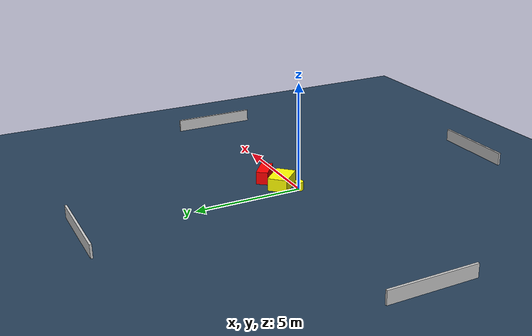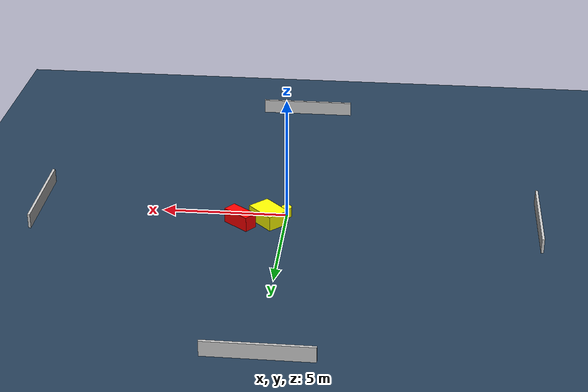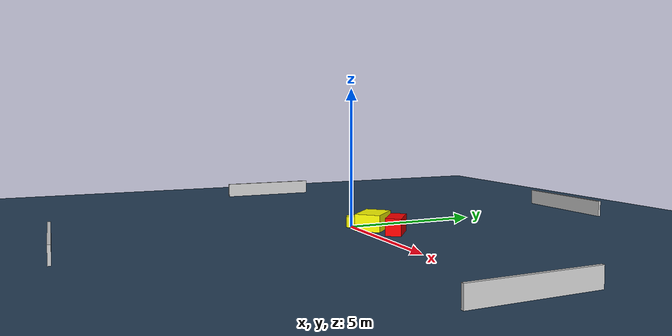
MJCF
<?xml version="1.0" ?>
<mujoco model="generated_environment">
  <option timestep="0.01" integrator="RK4" cone="elliptic"/>
  <default>
    <geom density="1"/>
  </default>
  <asset>
    <texture builtin="gradient" height="3072" name="skybox" rgb1="0.3 0.5 0.7" rgb2="0 0 0" type="skybox" width="512"/>
    <texture builtin="checker" height="300" name="groundplane" rgb1="0.2 0.3 0.4" rgb2="0.1 0.2 0.3" type="2d" width="300"/>
    <material name="groundplane" reflectance="0.2" texrepeat="5 5" texture="groundplane"/>
  </asset>
  <worldbody>
    <light dir="0 0 -1" directional="true" pos="0 0 1.5"/>
    <geom condim="3" friction="0.5 0.005 0.001" material="groundplane" name="floor" pos="0 0 0" size="0 0 0.05" type="plane"/>
    <body name="walls">
      <geom name="wall_1" condim="4" pos="-10.0 0.0 0.3" rgba="0.800000011920929 0.800000011920929 0.800000011920929 1.0" size="0.05 2.0 0.3" type="box"/>
      <geom name="wall_2" condim="4" pos="10.0 0.0 0.3" rgba="0.800000011920929 0.800000011920929 0.800000011920929 1.0" size="0.05 2.0 0.3" type="box"/>
      <geom name="wall_3" condim="4" pos="0.0 -10.0 0.3" rgba="0.800000011920929 0.800000011920929 0.800000011920929 1.0" size="2.0 0.05 0.3" type="box"/>
      <geom name="wall_4" condim="4" pos="0.0 10.0 0.3" rgba="0.800000011920929 0.800000011920929 0.800000011920929 1.0" size="2.0 0.05 0.3" type="box"/>
    </body>
    <body name="robot">
      <joint name="joint_x" type="slide" pos="0 0 0" axis="1 0 0"/>
      <joint name="joint_y" type="slide" pos="0 0 0" axis="0 1 0"/>
      <geom name="robot" type="cylinder" pos="0.0 0.0 0.2" size="0.2 0.2 0.0" mass="5.0" friction="1.0 0.005 0.0001" condim="4" rgba="1.0 1.0 0.0 1.0"/>
    </body>
    <body name="obstacle_1_movable">
      <geom name="obstacle_1_movable" condim="4" pos="0.6743810101135275 0.5405053593210273 0.3" euler="0 0 224.54140862504323" friction="0.0 0.005 0.001" rgba="1.0 1.0 0.0 1.0" size="0.46019205899648813 0.6538964913046357 0.3" type="box" mass="0.1"/>
      <joint type="free"/>
    </body>
    <body name="obstacle_2_static">
      <geom name="obstacle_2_static" condim="4" pos="1.7655741489488563 0.8813745790447168 0.3" euler="0 0 52.21332798055856" friction="0.0 0.005 0.001" rgba="1.0 0.0 0.0 1.0" size="0.27390046083660546 0.597656031279159 0.3" type="box"/>
    </body>
  </worldbody>
  <actuator>
    <motor name="actuator_x" joint="joint_x" gear="1" ctrlrange="-1 1"/>
    <motor name="actuator_y" joint="joint_y" gear="1" ctrlrange="-1 1"/>
  </actuator>
</mujoco>
